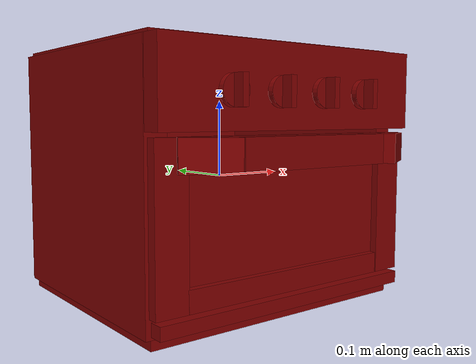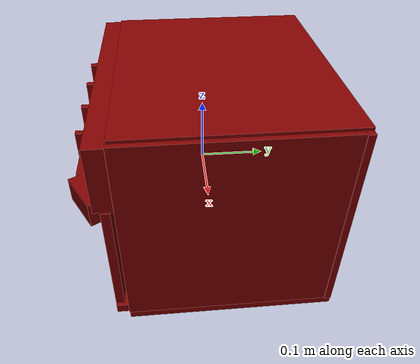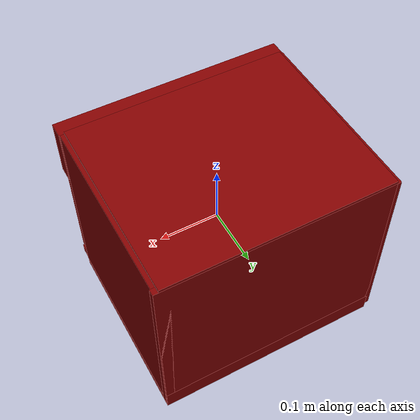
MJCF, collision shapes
<?xml version='1.0' encoding='UTF-8'?>
<mujoco model="model">
  <option timestep="0.002" gravity="0.0 0.0 -9.81"/>
  <compiler angle="radian"/>
  <asset>
    <mesh file="visuals/Body001.obj" name="Body001_vis"/>
    <mesh file="visuals/Container001.obj" name="Container001_vis"/>
    <mesh file="visuals/Door001.obj" name="Door001_vis"/>
    <mesh file="visuals/Door001_Clear.obj" name="Door001_Clear_vis"/>
    <mesh file="visuals/Knob001.obj" name="Knob001_vis"/>
    <mesh file="visuals/Knob002.obj" name="Knob002_vis"/>
    <mesh file="visuals/Knob003.obj" name="Knob003_vis"/>
    <mesh file="visuals/Knob004.obj" name="Knob004_vis"/>
    <mesh file="visuals/Shelf001.obj" name="Shelf001_vis"/>
    <texture file="visuals/T_BC001.png" name="Body001_material" type="2d"/>
    <material name="Body001_material" rgba="1 1 1 1.0" texture="Body001_material" shininess="0.141421377658844" specular="8"/>
    <texture file="visuals/T_BC001.png" name="Container001_material" type="2d"/>
    <material name="Container001_material" rgba="1 1 1 1.0" texture="Container001_material" shininess="0.141421377658844" specular="11"/>
    <texture file="visuals/T_BC001.png" name="Door001_material" type="2d"/>
    <material name="Door001_material" rgba="1 1 1 1.0" texture="Door001_material" shininess="0.141421377658844" specular="6"/>
    <material name="Door001_Clear_material" rgba="0.28266844153404236 0.28266844153404236 0.28266844153404236 0.699999988079071" shininess="0.5176590085029602" specular="0.3103448502657381"/>
    <texture file="visuals/T_BC001.png" name="Knob001_material" type="2d"/>
    <material name="Knob001_material" rgba="1 1 1 1.0" texture="Knob001_material" shininess="0.141421377658844" specular="0.3103448502657381"/>
    <texture file="visuals/T_BC001.png" name="Knob002_material" type="2d"/>
    <material name="Knob002_material" rgba="1 1 1 1.0" texture="Knob002_material" shininess="0.141421377658844" specular="0.3103448502657381"/>
    <texture file="visuals/T_BC001.png" name="Knob003_material" type="2d"/>
    <material name="Knob003_material" rgba="1 1 1 1.0" texture="Knob003_material" shininess="0.141421377658844" specular="0.3103448502657381"/>
    <texture file="visuals/T_BC001.png" name="Knob004_material" type="2d"/>
    <material name="Knob004_material" rgba="1 1 1 1.0" texture="Knob004_material" shininess="0.141421377658844" specular="0.3103448502657381"/>
    <texture file="visuals/T_BC001.png" name="Shelf001_material" type="2d"/>
    <material name="Shelf001_material" rgba="1 1 1 1.0" texture="Shelf001_material" shininess="0.141421377658844" specular="11"/>
  </asset>
  <default>
    <default class="visual">
      <geom conaffinity="0" contype="0" group="1" type="mesh"/>
    </default>
    <default class="collision">
      <geom group="0" rgba="0.5 0 0 0.5"/>
    </default>
    <default class="spawn">
      <geom group="0" rgba="1 1 1 0.5" contype="0" conaffinity="0"/>
      <site group="0" rgba="1 1 1 0.5"/>
    </default>
    <default class="region">
      <geom group="1" conaffinity="0" contype="0" rgba="0 1 0 0"/>
    </default>
  </default>
  <worldbody>
    <body>
      <body name="object">
        <geom mesh="Body001_vis" type="mesh" solimp="0.998 0.998 0.001" solref="0.001 1" friction="0.95 0.3 0.1" class="visual" material="Body001_material"/>
        <geom class="collision" type="box" pos="-0.000285 0.029017 0.164498" size="0.18516673147678375 0.1568266600370407 0.002282035769894719" quat="1.0 0.0 0.0 0.0" density="1000.0"/>
        <geom class="collision" type="box" pos="0.003800 0.180741 0.005759" size="0.18925167620182037 0.005102730821818113 0.15594731271266937" quat="1.0 0.0 0.0 0.0" density="1000.0"/>
        <geom class="collision" type="box" pos="-0.178257 0.028473 0.005759" size="0.013867438770830631 0.1573706865310669 0.15594728291034698" quat="1.0 0.0 0.0 0.0" density="1000.0"/>
        <geom class="collision" type="box" pos="0.178815 0.028473 0.005759" size="0.012715711258351803 0.1573706567287445 0.1559472531080246" quat="1.0 0.0 0.0 0.0" density="1000.0"/>
        <geom class="collision" type="box" pos="0.002911 0.028984 -0.145544" size="0.18836267292499542 0.1568603515625 0.016933241859078407" quat="1.0 0.0 0.0 0.0" density="1000.0"/>
        <geom class="collision" type="box" pos="0.000774 -0.141654 0.112889" size="0.19217965006828308 0.013198900036513805 0.04881777614355087" quat="1.0 0.0 0.0 0.0" density="1000.0"/>
        <geom class="collision" type="box" pos="0.002911 -0.137730 -0.138757" size="0.18836256861686707 0.008808239363133907 0.007798697799444199" quat="1.0 0.0 0.0 0.0" density="1000.0"/>
        <body name="Container001">
          <joint axis="0.0 -1.0 0.0" pos="-0.000001 0.023075 -0.084908" limited="true" name="Container001_joint" range="0.0 0.2" type="slide" damping="1" frictionloss="1" armature=".01" stiffness="0.05"/>
          <geom mesh="Container001_vis" type="mesh" solimp="0.998 0.998 0.001" solref="0.001 1" friction="0.95 0.3 0.1" class="visual" material="Container001_material"/>
          <geom class="collision" type="box" pos="0.000606 0.023102 -0.097902" size="0.14916899800300598 0.10389189422130585 0.0023375586606562138" quat="1.0 0.0 0.0 0.0" density="1000.0"/>
          <geom class="collision" type="box" pos="0.000606 0.127427 -0.083151" size="0.1491692215204239 0.011511871591210365 0.002343819011002779" quat="0.8079511523246765 0.5892494320869446 -1.3083965735004468e-16 5.746717193750731e-24" density="1000.0"/>
          <geom class="collision" type="box" pos="0.000606 0.136997 -0.070807" size="0.14916901290416718 0.006165049970149994 0.0023375588934868574" quat="1.0 0.0 0.0 0.0" density="1000.0"/>
          <geom class="collision" type="box" pos="0.158868 0.023815 -0.070807" size="0.005137099884450436 0.11485780775547028 0.002337559126317501" quat="1.0 0.0 0.0 0.0" density="1000.0"/>
          <geom class="collision" type="box" pos="0.150326 0.023815 -0.083151" size="0.11485791951417923 0.011511876247823238 0.002343822503462434" quat="0.5713077783584595 0.4166622459888458 -0.4166622459888458 -0.5713077783584595" density="1000.0"/>
          <geom class="collision" type="box" pos="-0.151251 0.023815 -0.083151" size="0.11485791951417923 0.011511876247823238 0.002343822503462434" quat="0.5713077783584595 0.4166622459888458 0.4166622459888458 0.5713077783584595" density="1000.0"/>
          <geom class="collision" type="box" pos="-0.158708 0.023815 -0.070807" size="0.004052185453474522 0.11485780775547028 0.0023375593591481447" quat="1.0 0.0 0.0 0.0" density="1000.0"/>
          <geom class="collision" type="box" pos="0.000606 -0.090714 -0.070807" size="0.14916904270648956 0.006165051367133856 0.0023375595919787884" quat="1.0 0.0 0.0 0.0" density="1000.0"/>
          <geom class="collision" type="box" pos="0.000606 -0.081145 -0.083151" size="0.1491692215204239 0.011511871591210365 0.002343819011002779" quat="0.8079511523246765 -0.5892494320869446 -1.3083964411515487e-16 -1.2540536009794719e-23" density="1000.0"/>
        </body>
        <body name="Door001">
          <joint axis="1.0 0.0 0.0" pos="0.000008 -0.145776 -0.123967" limited="true" name="Door001_joint" range="0.0 1.5707963267948966" type="hinge" damping="1" frictionloss="1" armature=".01" stiffness="-1" springref="0.5"/>
          <geom mesh="Door001_vis" type="mesh" solimp="0.998 0.998 0.001" solref="0.001 1" friction="0.95 0.3 0.1" class="visual" material="Door001_material"/>
          <geom class="collision" type="box" pos="-0.170150 -0.140087 -0.033341" size="0.020616723224520683 0.006325087044388056 0.09211531281471252" quat="1.0 0.0 0.0 0.0" density="1000.0"/>
          <geom class="collision" type="box" pos="0.169248 -0.140087 -0.033341" size="0.020616717636585236 0.006325084716081619 0.09211527556180954" quat="1.0 0.0 0.0 0.0" density="1000.0"/>
          <geom class="collision" type="box" pos="-0.001730 -0.140087 -0.112366" size="0.14872977137565613 0.006325081922113895 0.013090146705508232" quat="1.0 0.0 0.0 0.0" density="1000.0"/>
          <geom class="collision" type="box" pos="-0.001730 -0.140087 0.040897" size="0.14872972667217255 0.006325079593807459 0.018063558265566826" quat="1.0 0.0 0.0 0.0" density="1000.0"/>
          <geom class="collision" type="box" pos="-0.000304 -0.179888 0.040897" size="0.10825802385807037 0.006666222587227821 0.018063552677631378" quat="1.0 0.0 0.0 0.0" density="1000.0"/>
          <geom class="collision" type="box" pos="0.140898 -0.170695 0.040897" size="0.03257526829838753 0.010653190314769745 0.018063468858599663" quat="0.9660395979881287 0.0 0.0 0.2583940923213959" density="1000.0"/>
          <geom class="collision" type="box" pos="-0.139783 -0.169197 0.040897" size="0.03257526829838753 0.010653190314769745 0.018063468858599663" quat="0.9660395979881287 0.0 -0.0 -0.2583940923213959" density="1000.0"/>
          <body name="Door001_Clear">
            <geom mesh="Door001_Clear_vis" type="mesh" solimp="0.998 0.998 0.001" solref="0.001 1" friction="0.95 0.3 0.1" class="visual" material="Door001_Clear_material"/>
            <geom class="collision" type="box" pos="-0.000581 -0.136547 -0.039070" size="0.1523171067237854 0.0009614982409402728 0.06301520764827728" quat="1.0 0.0 0.0 0.0" density="1000.0"/>
          </body>
        </body>
        <body name="Knob001">
          <joint axis="0.0 1.0 0.0" pos="-0.101310 -0.165172 0.106868" limited="true" name="Knob001_joint" range="0.0 4.71238898038469" type="hinge" damping="0.05" armature="0.001"/>
          <geom mesh="Knob001_vis" type="mesh" solimp="0.998 0.998 0.001" solref="0.001 1" friction="0.95 0.3 0.1" class="visual" material="Knob001_material"/>
          <geom class="collision" type="cylinder" pos="-0.101197 -0.159479 0.106910" size="0.017945503816008568 0.003762940876185894" quat="0.7071067094802856 0.7071068286895752 0.0 0.0" density="1000.0"/>
          <geom class="collision" type="box" pos="-0.101028 -0.170523 0.106819" size="0.003955420106649399 0.007150416262447834 0.017602942883968353" quat="1.0 0.0 0.0 0.0" density="1000.0"/>
        </body>
        <body name="Knob002">
          <joint axis="0.0 1.0 0.0" pos="-0.033783 -0.165172 0.106868" limited="true" name="Knob002_joint" range="0.0 3.5779249665883754" type="hinge" damping="0.05" armature="0.001"/>
          <geom mesh="Knob002_vis" type="mesh" solimp="0.998 0.998 0.001" solref="0.001 1" friction="0.95 0.3 0.1" class="visual" material="Knob002_material"/>
          <geom class="collision" type="box" pos="-0.033869 -0.170523 0.106819" size="0.003955420572310686 0.007150416262447834 0.017602944746613503" quat="1.0 0.0 0.0 0.0" density="1000.0"/>
          <geom class="collision" type="cylinder" pos="-0.034038 -0.159479 0.106910" size="0.017945503816008568 0.003762940876185894" quat="0.7071067094802856 0.7071068286895752 0.0 0.0" density="1000.0"/>
        </body>
        <body name="Knob003">
          <joint axis="0.0 1.0 0.0" pos="0.033750 -0.165172 0.106868" limited="true" name="Knob003_joint" range="0.0 4.886921905584122" type="hinge" damping="0.05" armature="0.001"/>
          <geom mesh="Knob003_vis" type="mesh" solimp="0.998 0.998 0.001" solref="0.001 1" friction="0.95 0.3 0.1" class="visual" material="Knob003_material"/>
          <geom class="collision" type="box" pos="0.034090 -0.170523 0.106819" size="0.003955420106649399 0.007150416262447834 0.017602942883968353" quat="1.0 0.0 0.0 0.0" density="1000.0"/>
          <geom class="collision" type="cylinder" pos="0.033922 -0.159479 0.106910" size="0.017945503816008568 0.003762940876185894" quat="0.7071067094802856 0.7071068286895752 0.0 0.0" density="1000.0"/>
        </body>
        <body name="Knob004">
          <joint axis="0.0 1.0 0.0" pos="0.101261 -0.165172 0.106868" limited="true" name="Knob004_joint" range="0.0 5.096361415823442" type="hinge" damping="0.05" armature="0.001"/>
          <geom mesh="Knob004_vis" type="mesh" solimp="0.998 0.998 0.001" solref="0.001 1" friction="0.95 0.3 0.1" class="visual" material="Knob004_material"/>
          <geom class="collision" type="box" pos="0.101250 -0.170523 0.106819" size="0.003955420106649399 0.007150416262447834 0.017602942883968353" quat="1.0 0.0 0.0 0.0" density="1000.0"/>
          <geom class="collision" type="cylinder" pos="0.101081 -0.159479 0.106910" size="0.017945503816008568 0.003762940876185894" quat="0.7071067094802856 0.7071068286895752 0.0 0.0" density="1000.0"/>
        </body>
        <body name="Shelf001">
          <joint axis="0.0 -1.0 0.0" pos="-0.000007 0.023092 -0.039304" limited="true" name="Shelf001_joint" range="0.0 0.22" type="slide" damping="1" frictionloss="1" armature=".01" stiffness="0.05"/>
          <geom mesh="Shelf001_vis" type="mesh" solimp="0.998 0.998 0.001" solref="0.001 1" friction="0.95 0.3 0.1" class="visual" material="Shelf001_material"/>
          <geom class="collision" type="box" pos="-0.161132 0.022560 -0.020054" size="0.0017678425647318363 0.09989189356565475 0.0025365876499563456" quat="1.0 0.0 0.0 0.0" density="1000.0"/>
          <geom class="collision" type="box" pos="-0.000876 0.023216 -0.045452" size="0.13221658766269684 0.12015514820814133 0.004408984445035458" quat="1.0 0.0 0.0 0.0" density="1000.0"/>
          <geom class="collision" type="box" pos="-0.139449 0.140608 -0.031957" size="0.0021842983551323414 0.010595916770398617 0.002235878724604845" quat="0.42208170890808105 0.6446525454521179 -0.5332596302032471 -0.3491479456424713" density="1000.0"/>
          <geom class="collision" type="box" pos="-0.139449 -0.094370 -0.031957" size="0.0021842976566404104 0.010595913045108318 0.002235878026112914" quat="0.42208191752433777 -0.6446525454521179 -0.5332594513893127 0.3491479456424713" density="1000.0"/>
          <geom class="collision" type="box" pos="0.153976 -0.086351 -0.020767" size="0.004080499988049269 0.010595916770398617 0.0018228644039481878" quat="0.8873757123947144 0.0 -0.0 -0.46104705333709717" density="1000.0"/>
          <geom class="collision" type="box" pos="0.139568 -0.094370 -0.031957" size="0.0021842981223016977 0.010595916770398617 0.002235878026112914" quat="0.4220818877220154 -0.6446525454521179 0.5332595109939575 -0.3491479456424713" density="1000.0"/>
          <geom class="collision" type="box" pos="0.139568 0.140608 -0.031957" size="0.0021842983551323414 0.010595916770398617 0.002235878724604845" quat="0.42208170890808105 0.6446525454521179 0.5332596302032471 0.3491479456424713" density="1000.0"/>
          <geom class="collision" type="box" pos="0.153976 0.132589 -0.020767" size="0.004080499988049269 0.010595916770398617 0.0018228644039481878" quat="0.8873757123947144 0.0 0.0 0.46104705333709717" density="1000.0"/>
          <geom class="collision" type="box" pos="0.162534 0.022560 -0.020054" size="0.002606199588626623 0.09989187121391296 0.0025365871842950583" quat="1.0 0.0 0.0 0.0" density="1000.0"/>
          <geom class="collision" type="box" pos="-0.152247 -0.091034 -0.020767" size="0.0031949582044035196 0.010595915839076042 0.0018228644039481878" quat="0.423305481672287 0.0 -0.0 -0.905987024307251" density="1000.0"/>
          <geom class="collision" type="box" pos="-0.154393 0.134999 -0.020767" size="0.0028640320524573326 0.010595914907753468 0.0018228644039481878" quat="0.9250975847244263 0.0 -0.0 -0.3797295093536377" density="1000.0"/>
        </body>
        <geom class="region" name="reg_int" type="box" pos="0.0010325000000000056 0.025355500000000003 0.013104500000000005" size="0.16629549999999998 0.1564285 0.1494475"/>
        <geom class="region" name="reg_main" type="box" pos="0.0 0.012781 -5.000000000005e-07" size="0.198043 0.17306300000000002 0.1667805"/>
      </body>
    </body>
  </worldbody>
  <actuator>
    <motor name="Container001_joint_actuator" joint="Container001_joint" gear="10"/>
    <motor name="Door001_joint_actuator" joint="Door001_joint" gear="10"/>
    <motor name="Knob001_joint_actuator" joint="Knob001_joint" gear="10"/>
    <motor name="Knob002_joint_actuator" joint="Knob002_joint" gear="10"/>
    <motor name="Knob003_joint_actuator" joint="Knob003_joint" gear="10"/>
    <motor name="Knob004_joint_actuator" joint="Knob004_joint" gear="10"/>
    <motor name="Shelf001_joint_actuator" joint="Shelf001_joint" gear="10"/>
  </actuator>
</mujoco>
